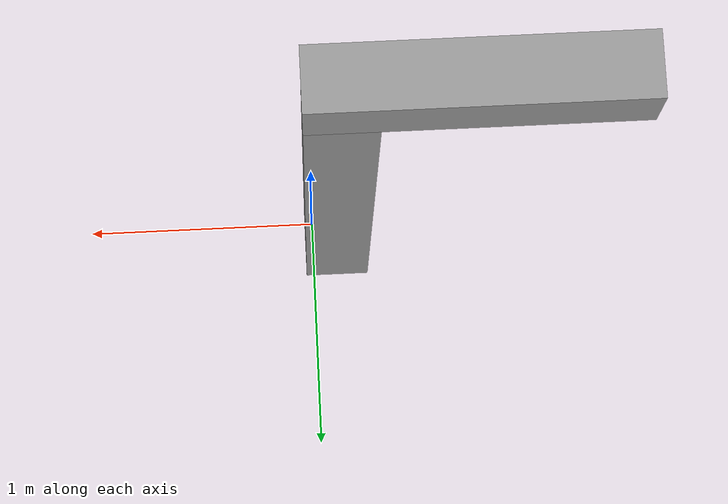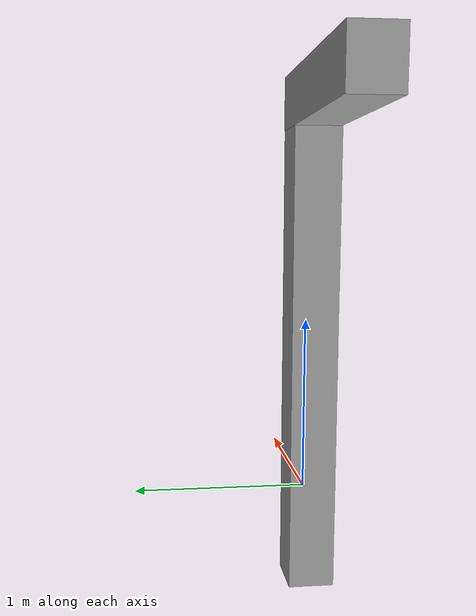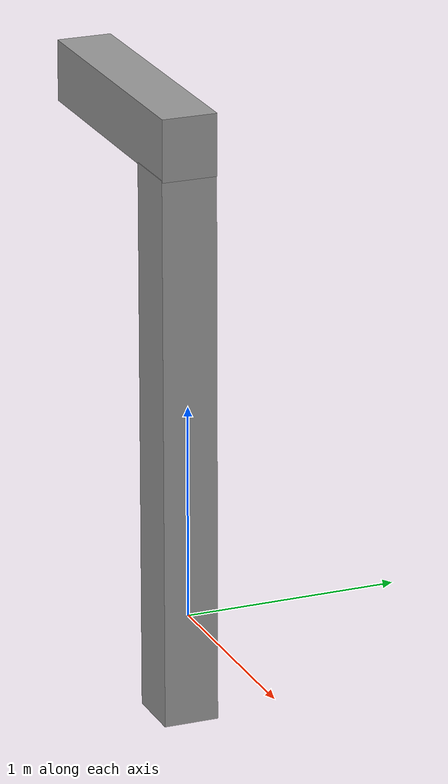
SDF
<?xml version='1.0'?>
<sdf version='1.6'>
  <model name='stand'>
    <link name='link'>
      <inertial>
        <mass>0.192859</mass>
        <inertia>
          <ixx>0.109258</ixx>
          <ixy>0</ixy>
          <ixz>0</ixz>
          <iyy>0.109531</iyy>
          <iyz>0</iyz>
          <izz>0.00240557</izz>
        </inertia>
        <pose frame=''>0 0 0 0 -0 0</pose>
      </inertial>
      <self_collide>0</self_collide>
      <enable_wind>0</enable_wind>
      <kinematic>0</kinematic>
      <pose frame=''>-0.113807 0 0.780381 0 -0 0</pose>
      <gravity>1</gravity>
      <visual name='visual'>
        <geometry>
          <box>
            <size>0.288692 0.257557 2.59459</size>
          </box>
        </geometry>
        <material>
          <script>
            <name>Gazebo/Grey</name>
            <uri>file://media/materials/scripts/gazebo.material</uri>
          </script>
          <ambient>0.533 0.541 0.522 1</ambient>
          <shader type='vertex'>
            <normal_map>__default__</normal_map>
          </shader>
          <diffuse>0.7 0.7 0.7 1</diffuse>
          <specular>0.01 0.01 0.01 1</specular>
          <emissive>0 0 0 1</emissive>
        </material>
        <pose frame=''>0 0 0 0 -0 0</pose>
        <transparency>0</transparency>
        <cast_shadows>1</cast_shadows>
      </visual>
      <collision name='collision'>
        <laser_retro>0</laser_retro>
        <max_contacts>10</max_contacts>
        <pose frame=''>0 0 0 0 -0 0</pose>
        <geometry>
          <box>
            <size>0.288692 0.257557 2.59459</size>
          </box>
        </geometry>
        <surface>
          <friction>
            <ode>
              <mu>1</mu>
              <mu2>1</mu2>
              <fdir1>0 0 0</fdir1>
              <slip1>0</slip1>
              <slip2>0</slip2>
            </ode>
            <torsional>
              <coefficient>1</coefficient>
              <patch_radius>0</patch_radius>
              <surface_radius>0</surface_radius>
              <use_patch_radius>1</use_patch_radius>
              <ode>
                <slip>0</slip>
              </ode>
            </torsional>
          </friction>
          <bounce>
            <restitution_coefficient>0</restitution_coefficient>
            <threshold>1e+06</threshold>
          </bounce>
          <contact>
            <collide_without_contact>0</collide_without_contact>
            <collide_without_contact_bitmask>1</collide_without_contact_bitmask>
            <collide_bitmask>1</collide_bitmask>
            <ode>
              <soft_cfm>0</soft_cfm>
              <soft_erp>0.2</soft_erp>
              <kp>1e+13</kp>
              <kd>1</kd>
              <max_vel>0.01</max_vel>
              <min_depth>0</min_depth>
            </ode>
            <bullet>
              <split_impulse>1</split_impulse>
              <split_impulse_penetration_threshold>-0.01</split_impulse_penetration_threshold>
              <soft_cfm>0</soft_cfm>
              <soft_erp>0.2</soft_erp>
              <kp>1e+13</kp>
              <kd>1</kd>
            </bullet>
          </contact>
        </surface>
      </collision>
    </link>
    <link name='link_clone'>
      <inertial>
        <mass>0.0964728</mass>
        <inertia>
          <ixx>0.0140755</ixx>
          <ixy>0</ixy>
          <ixz>0</ixz>
          <iyy>0.0142123</iyy>
          <iyz>0</iyz>
          <izz>0.00120333</izz>
        </inertia>
        <pose frame=''>0 0 0 0 -0 0</pose>
      </inertial>
      <self_collide>0</self_collide>
      <enable_wind>0</enable_wind>
      <kinematic>0</kinematic>
      <pose frame=''>-0.617029 0.00234 2.21515 0 -1.566 0</pose>
      <gravity>1</gravity>
      <visual name='visual'>
        <geometry>
          <box>
            <size>0.288692 0.257557 1.29788</size>
          </box>
        </geometry>
        <material>
          <script>
            <name>Gazebo/Grey</name>
            <uri>file://media/materials/scripts/gazebo.material</uri>
          </script>
          <shader type='vertex'>
            <normal_map>__default__</normal_map>
          </shader>
          <ambient>0.533 0.541 0.522 1</ambient>
          <diffuse>0.7 0.7 0.7 1</diffuse>
          <specular>0.01 0.01 0.01 1</specular>
          <emissive>0 0 0 1</emissive>
        </material>
        <pose frame=''>0 0 0 0 -0 0</pose>
        <transparency>0</transparency>
        <cast_shadows>1</cast_shadows>
      </visual>
      <collision name='collision'>
        <laser_retro>0</laser_retro>
        <max_contacts>10</max_contacts>
        <pose frame=''>0 0 0 0 -0 0</pose>
        <geometry>
          <box>
            <size>0.288692 0.257557 1.29788</size>
          </box>
        </geometry>
        <surface>
          <friction>
            <ode>
              <mu>1</mu>
              <mu2>1</mu2>
              <fdir1>0 0 0</fdir1>
              <slip1>0</slip1>
              <slip2>0</slip2>
            </ode>
            <torsional>
              <coefficient>1</coefficient>
              <patch_radius>0</patch_radius>
              <surface_radius>0</surface_radius>
              <use_patch_radius>1</use_patch_radius>
              <ode>
                <slip>0</slip>
              </ode>
            </torsional>
          </friction>
          <bounce>
            <restitution_coefficient>0</restitution_coefficient>
            <threshold>1e+06</threshold>
          </bounce>
          <contact>
            <collide_without_contact>0</collide_without_contact>
            <collide_without_contact_bitmask>1</collide_without_contact_bitmask>
            <collide_bitmask>1</collide_bitmask>
            <ode>
              <soft_cfm>0</soft_cfm>
              <soft_erp>0.2</soft_erp>
              <kp>1e+13</kp>
              <kd>1</kd>
              <max_vel>0.01</max_vel>
              <min_depth>0</min_depth>
            </ode>
            <bullet>
              <split_impulse>1</split_impulse>
              <split_impulse_penetration_threshold>-0.01</split_impulse_penetration_threshold>
              <soft_cfm>0</soft_cfm>
              <soft_erp>0.2</soft_erp>
              <kp>1e+13</kp>
              <kd>1</kd>
            </bullet>
          </contact>
        </surface>
      </collision>
    </link>
    <static>0</static>
    <allow_auto_disable>1</allow_auto_disable>
  </model>
</sdf>
